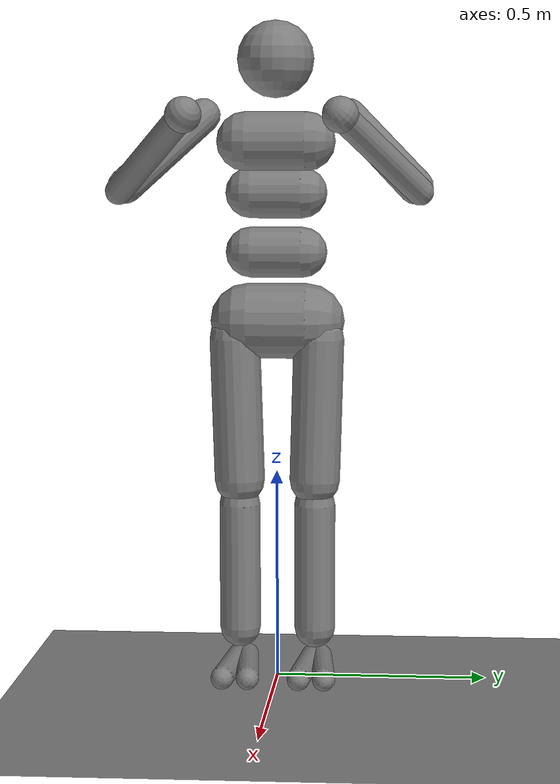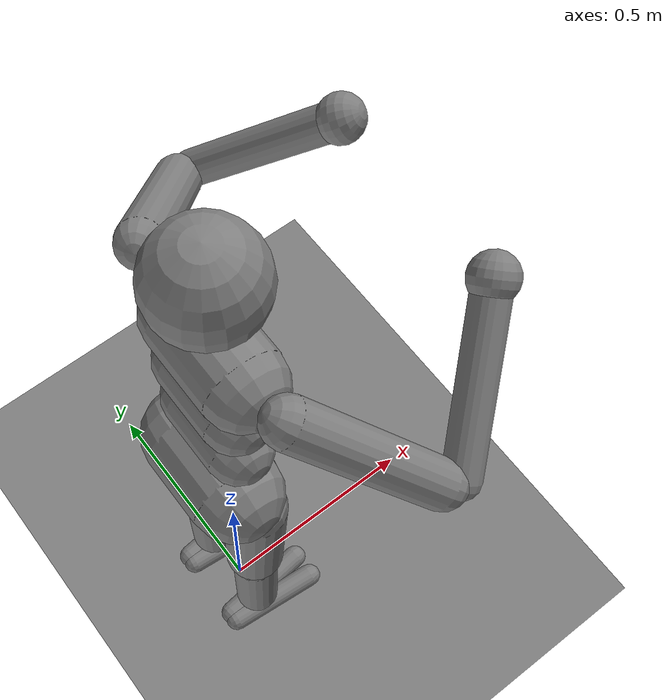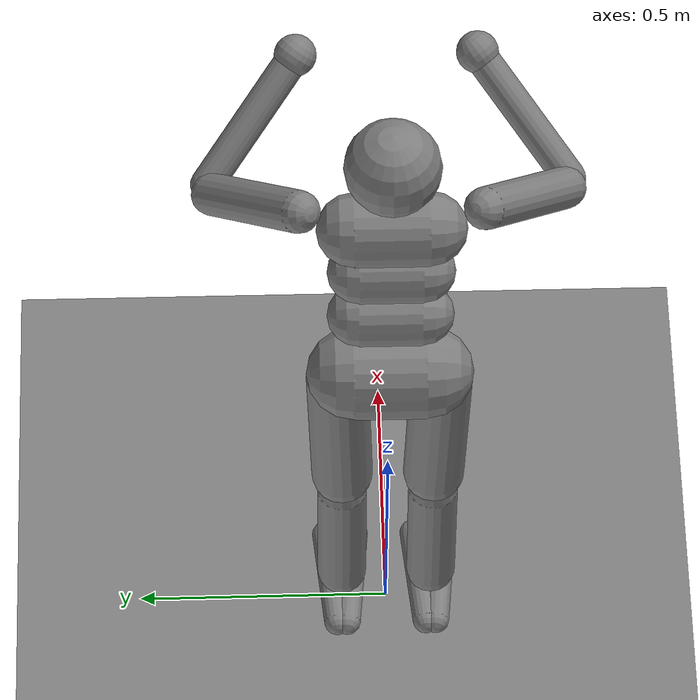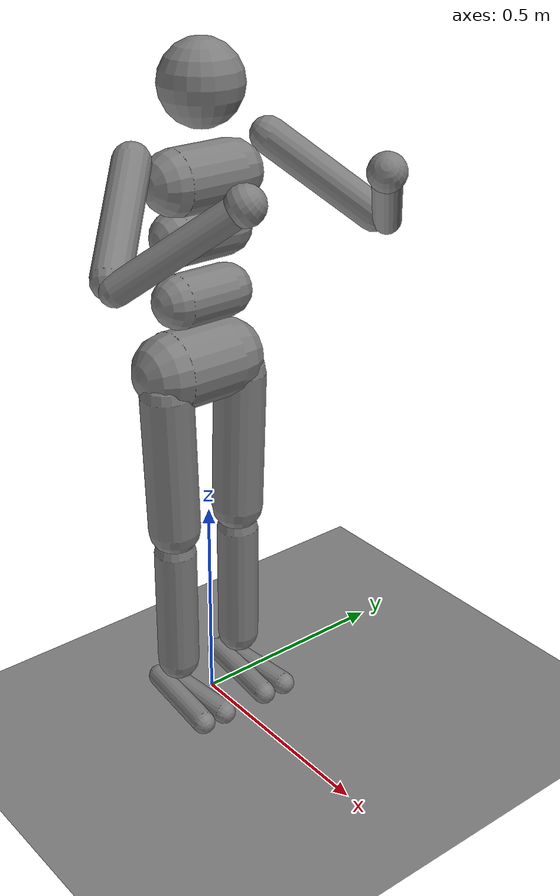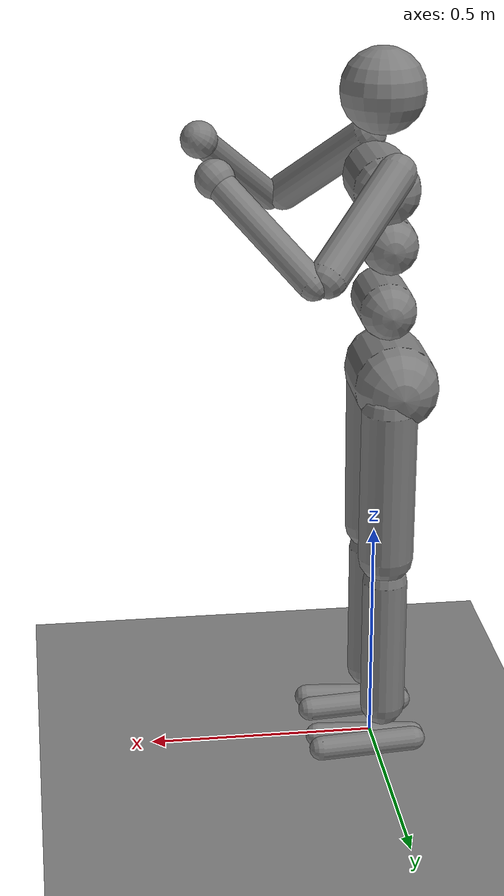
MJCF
<mujoco>
  <worldbody>
    <body pos="0 0 1.282" quat="-1 0 0 0" gravcomp="0" name="torso_0">
      <freejoint name="root_1" />
      <geom density="1000" type="capsule" size="0.07 0.07000002" pos="0 0 0" quat="0.7071068 0.7071068 0 0" priority="0" contype="1" conaffinity="1" group="1" condim="1" solmix="1" solref="0.015 1" solimp="0.9 0.99 0.003" margin="0" gap="0" friction="0.7 0.005 0.0001" fluidshape="none" fluidcoef="5 0.25 1.5 1 1" name="torso_2" />
      <geom density="1000" type="capsule" size="0.06 0.06000001" pos="-0.01 0 -0.12" quat="0.7071068 0.7071068 0 0" priority="0" contype="1" conaffinity="1" group="1" condim="1" solmix="1" solref="0.015 1" solimp="0.9 0.99 0.003" margin="0" gap="0" friction="0.7 0.005 0.0001" fluidshape="none" fluidcoef="5 0.25 1.5 1 1" name="waist_upper_3" />
      <body pos="0 0 0.1899999" quat="-1 0 0 0" gravcomp="0" name="head_4">
        <geom density="1000" type="sphere" size="0.09" pos="0 0 0" quat="-1 0 0 0" priority="0" contype="1" conaffinity="1" group="1" condim="1" solmix="1" solref="0.015 1" solimp="0.9 0.99 0.003" margin="0" gap="0" friction="0.7 0.005 0.0001" fluidshape="none" fluidcoef="5 0.25 1.5 1 1" name="head_8" />
      </body>
      <body pos="-0.01 0 -0.26" quat="-1 0 0 0" gravcomp="0" name="waist_lower_5">
        <joint type="hinge" pos="0 0 0.06499994" axis="-1.192093E-07 0 1" ref="0" armature="0.01" springref="0" springdamper="0 0" damping="5" stiffness="20" solreflimit="0.02 1" solimplimit="0 0.99 0.01 0.5 2" solreffriction="0.02 1" solimpfriction="0.9 0.95 0.001 0.5 2" frictionloss="0" limited="true" margin="0" range="-44.99999 44.99999" name="abdomen_z_9" />
        <joint type="hinge" pos="0 0 0.06499994" axis="-1.192093E-07 1 0" ref="0" armature="0.01" springref="0" springdamper="0 0" damping="5" stiffness="10" solreflimit="0.02 1" solimplimit="0 0.99 0.01 0.5 2" solreffriction="0.02 1" solimpfriction="0.9 0.95 0.001 0.5 2" frictionloss="0" limited="true" margin="0" range="-75.00018 30.00002" name="abdomen_y_10" />
        <geom density="1000" type="capsule" size="0.06 0.06000001" pos="0 0 0" quat="0.7071068 0.7071068 0 0" priority="0" contype="1" conaffinity="1" group="1" condim="1" solmix="1" solref="0.015 1" solimp="0.9 0.99 0.003" margin="0" gap="0" friction="0.7 0.005 0.0001" fluidshape="none" fluidcoef="5 0.25 1.5 1 1" name="waist_lower_11" />
        <body pos="0 0 -0.165" quat="-1 0 0 0" gravcomp="0" name="pelvis_12">
          <joint type="hinge" pos="0 0 0.1" axis="1 0 0" ref="0" armature="0.01" springref="0" springdamper="0 0" damping="5" stiffness="10" solreflimit="0.02 1" solimplimit="0 0.99 0.01 0.5 2" solreffriction="0.02 1" solimpfriction="0.9 0.95 0.001 0.5 2" frictionloss="0" limited="true" margin="0" range="-34.99998 34.99998" name="abdomen_x_21" />
          <geom density="1000" type="capsule" size="0.09 0.07000002" pos="-0.02 0 0" quat="0.7071068 0.7071068 0 0" priority="0" contype="1" conaffinity="1" group="1" condim="1" solmix="1" solref="0.015 1" solimp="0.9 0.99 0.003" margin="0" gap="0" friction="0.7 0.005 0.0001" fluidshape="none" fluidcoef="5 0.25 1.5 1 1" name="butt_22" />
          <body pos="0 -0.1 -0.04000002" quat="-1 0 0 0" gravcomp="0" name="thigh_right_23">
            <joint type="hinge" pos="0 0 0" axis="1 0 0" ref="0" armature="0.01" springref="0" springdamper="0 0" damping="5" stiffness="10" solreflimit="0.02 1" solimplimit="0 0.99 0.01 0.5 2" solreffriction="0.02 1" solimpfriction="0.9 0.95 0.001 0.5 2" frictionloss="0" limited="true" margin="0" range="-30.00002 10" name="hip_x_right_31" />
            <joint type="hinge" pos="0 0 0" axis="-1.192093E-07 0 1" ref="0" armature="0.01" springref="0" springdamper="0 0" damping="5" stiffness="10" solreflimit="0.02 1" solimplimit="0 0.99 0.01 0.5 2" solreffriction="0.02 1" solimpfriction="0.9 0.95 0.001 0.5 2" frictionloss="0" limited="true" margin="0" range="-60.00014 34.99998" name="hip_z_right_32" />
            <joint type="hinge" pos="0 0 0" axis="-1.192093E-07 1 0" ref="0" armature="0.01" springref="0" springdamper="0 0" damping="5" stiffness="10" solreflimit="0.02 1" solimplimit="0 0.99 0.01 0.5 2" solreffriction="0.02 1" solimpfriction="0.9 0.95 0.001 0.5 2" frictionloss="0" limited="true" margin="0" range="-149.9998 20.00001" name="hip_y_right_33" />
            <geom density="1000" type="capsule" size="0.06 0.170074" pos="0 0.005000003 -0.17" quat="0.999892 0.0147011 0 0" priority="0" contype="1" conaffinity="1" group="1" condim="1" solmix="1" solref="0.015 1" solimp="0.9 0.99 0.003" margin="0" gap="0" friction="0.7 0.005 0.0001" fluidshape="none" fluidcoef="5 0.25 1.5 1 1" name="thigh_right_34" />
            <body pos="0 0.009999998 -0.4" quat="-1 0 0 0" gravcomp="0" name="shin_right_35">
              <joint type="hinge" pos="0 0 0.02000004" axis="-1.192093E-07 -1 0" ref="0" armature="0.01" springref="0" springdamper="0 0" damping="0.2" stiffness="1" solreflimit="0.02 1" solimplimit="0 0.99 0.01 0.5 2" solreffriction="0.02 1" solimpfriction="0.9 0.95 0.001 0.5 2" frictionloss="0" limited="true" margin="0" range="-160.0002 2.000001" name="knee_right_43" />
              <geom density="1000" type="capsule" size="0.049 0.15" pos="0 0 -0.1500001" quat="-1 0 0 0" priority="0" contype="1" conaffinity="1" group="1" condim="1" solmix="1" solref="0.015 1" solimp="0.9 0.99 0.003" margin="0" gap="0" friction="0.7 0.005 0.0001" fluidshape="none" fluidcoef="5 0.25 1.5 1 1" name="shin_right_44" />
              <body pos="0 0 -0.39" quat="-1 0 0 0" gravcomp="0" name="foot_right_45">
                <joint type="hinge" pos="0 0 0.07999992" axis="-1.192093E-07 1 0" ref="0" armature="0.01" springref="0" springdamper="0 0" damping="0.2" stiffness="6" solreflimit="0.02 1" solimplimit="0 0.99 0.01 0.5 2" solreffriction="0.02 1" solimpfriction="0.9 0.95 0.001 0.5 2" frictionloss="0" limited="true" margin="0" range="-50.00002 50.00002" name="ankle_y_right_49" />
                <joint type="hinge" pos="0 0 0.03999996" axis="0.894427 0 0.447214" ref="0" armature="0.01" springref="0" springdamper="0 0" damping="0.2" stiffness="3" solreflimit="0.02 1" solimplimit="0 0.99 0.01 0.5 2" solreffriction="0.02 1" solimpfriction="0.9 0.95 0.001 0.5 2" frictionloss="0" limited="true" margin="0" range="-50.00002 50.00002" name="ankle_x_right_50" />
                <geom density="1000" type="capsule" size="0.02700001 0.105475" pos="0.035 -0.02 0" quat="0.7071068 -0.06704018 -0.7039217 0" priority="0" contype="1" conaffinity="1" group="1" condim="1" solmix="1" solref="0.015 1" solimp="0.9 0.99 0.003" margin="0" gap="0" friction="0.7 0.005 0.0001" fluidshape="none" fluidcoef="5 0.25 1.5 1 1" name="foot1_right_51" />
                <geom density="1000" type="capsule" size="0.02700001 0.105475" pos="0.035 0.02 0" quat="0.7071068 0.06704018 -0.7039217 0" priority="0" contype="1" conaffinity="1" group="1" condim="1" solmix="1" solref="0.015 1" solimp="0.9 0.99 0.003" margin="0" gap="0" friction="0.7 0.005 0.0001" fluidshape="none" fluidcoef="5 0.25 1.5 1 1" name="foot2_right_52" />
              </body>
            </body>
          </body>
          <body pos="0 0.1 -0.04000002" quat="-1 0 0 0" gravcomp="0" name="thigh_left_24">
            <joint type="hinge" pos="0 0 0" axis="-1 0 0" ref="0" armature="0.01" springref="0" springdamper="0 0" damping="5" stiffness="10" solreflimit="0.02 1" solimplimit="0 0.99 0.01 0.5 2" solreffriction="0.02 1" solimpfriction="0.9 0.95 0.001 0.5 2" frictionloss="0" limited="true" margin="0" range="-30.00002 10" name="hip_x_left_36" />
            <joint type="hinge" pos="0 0 0" axis="-1.192093E-07 0 -1" ref="0" armature="0.01" springref="0" springdamper="0 0" damping="5" stiffness="10" solreflimit="0.02 1" solimplimit="0 0.99 0.01 0.5 2" solreffriction="0.02 1" solimpfriction="0.9 0.95 0.001 0.5 2" frictionloss="0" limited="true" margin="0" range="-60.00014 34.99998" name="hip_z_left_37" />
            <joint type="hinge" pos="0 0 0" axis="-1.192093E-07 1 0" ref="0" armature="0.01" springref="0" springdamper="0 0" damping="5" stiffness="10" solreflimit="0.02 1" solimplimit="0 0.99 0.01 0.5 2" solreffriction="0.02 1" solimpfriction="0.9 0.95 0.001 0.5 2" frictionloss="0" limited="true" margin="0" range="-149.9998 20.00001" name="hip_y_left_38" />
            <geom density="1000" type="capsule" size="0.06 0.170074" pos="0 -0.005000003 -0.17" quat="0.999892 -0.0147011 0 0" priority="0" contype="1" conaffinity="1" group="1" condim="1" solmix="1" solref="0.015 1" solimp="0.9 0.99 0.003" margin="0" gap="0" friction="0.7 0.005 0.0001" fluidshape="none" fluidcoef="5 0.25 1.5 1 1" name="thigh_left_39" />
            <body pos="0 -0.009999998 -0.4" quat="-1 0 0 0" gravcomp="0" name="shin_left_40">
              <joint type="hinge" pos="0 0 0.02000004" axis="-1.192093E-07 -1 0" ref="0" armature="0.01" springref="0" springdamper="0 0" damping="0.2" stiffness="1" solreflimit="0.02 1" solimplimit="0 0.99 0.01 0.5 2" solreffriction="0.02 1" solimpfriction="0.9 0.95 0.001 0.5 2" frictionloss="0" limited="true" margin="0" range="-160.0002 2.000001" name="knee_left_46" />
              <geom density="1000" type="capsule" size="0.049 0.15" pos="0 0 -0.1500001" quat="-1 0 0 0" priority="0" contype="1" conaffinity="1" group="1" condim="1" solmix="1" solref="0.015 1" solimp="0.9 0.99 0.003" margin="0" gap="0" friction="0.7 0.005 0.0001" fluidshape="none" fluidcoef="5 0.25 1.5 1 1" name="shin_left_47" />
              <body pos="0 0 -0.39" quat="-1 0 0 0" gravcomp="0" name="foot_left_48">
                <joint type="hinge" pos="0 0 0.07999992" axis="-1.192093E-07 1 0" ref="0" armature="0.01" springref="0" springdamper="0 0" damping="0.2" stiffness="6" solreflimit="0.02 1" solimplimit="0 0.99 0.01 0.5 2" solreffriction="0.02 1" solimpfriction="0.9 0.95 0.001 0.5 2" frictionloss="0" limited="true" margin="0" range="-50.00002 50.00002" name="ankle_y_left_53" />
                <joint type="hinge" pos="0 0 0.03999996" axis="-0.8944269 0 -0.447214" ref="0" armature="0.01" springref="0" springdamper="0 0" damping="0.2" stiffness="3" solreflimit="0.02 1" solimplimit="0 0.99 0.01 0.5 2" solreffriction="0.02 1" solimpfriction="0.9 0.95 0.001 0.5 2" frictionloss="0" limited="true" margin="0" range="-50.00002 50.00002" name="ankle_x_left_54" />
                <geom density="1000" type="capsule" size="0.02700001 0.105475" pos="0.035 -0.02 0" quat="0.7071068 -0.06704018 -0.7039217 0" priority="0" contype="1" conaffinity="1" group="1" condim="1" solmix="1" solref="0.015 1" solimp="0.9 0.99 0.003" margin="0" gap="0" friction="0.7 0.005 0.0001" fluidshape="none" fluidcoef="5 0.25 1.5 1 1" name="foot1_left_55" />
                <geom density="1000" type="capsule" size="0.02700001 0.105475" pos="0.035 0.02 0" quat="0.7071068 0.06704018 -0.7039217 0" priority="0" contype="1" conaffinity="1" group="1" condim="1" solmix="1" solref="0.015 1" solimp="0.9 0.99 0.003" margin="0" gap="0" friction="0.7 0.005 0.0001" fluidshape="none" fluidcoef="5 0.25 1.5 1 1" name="foot2_left_56" />
              </body>
            </body>
          </body>
        </body>
      </body>
      <body pos="0 -0.17 0.05999994" quat="-1 0 0 0" gravcomp="0" name="upper_arm_right_6">
        <joint type="hinge" pos="0 0 0" axis="0.8164969 0.408248 0.408248" ref="0" armature="0.01" springref="0" springdamper="0 0" damping="0.2" stiffness="1" solreflimit="0.02 1" solimplimit="0 0.99 0.01 0.5 2" solreffriction="0.02 1" solimpfriction="0.9 0.95 0.001 0.5 2" frictionloss="0" limited="true" margin="0" range="-85.00001 60.00014" name="shoulder1_right_13" />
        <joint type="hinge" pos="0 0 0" axis="0 -0.7071068 0.7071068" ref="0" armature="0.01" springref="0" springdamper="0 0" damping="0.2" stiffness="1" solreflimit="0.02 1" solimplimit="0 0.99 0.01 0.5 2" solreffriction="0.02 1" solimpfriction="0.9 0.95 0.001 0.5 2" frictionloss="0" limited="true" margin="0" range="-85.00001 60.00014" name="shoulder2_right_14" />
        <geom density="1000" type="capsule" size="0.04 0.138564" pos="0.08 -0.08 -0.07999992" quat="0.8880737 -0.3250579 -0.3250579 0" priority="0" contype="1" conaffinity="1" group="1" condim="1" solmix="1" solref="0.015 1" solimp="0.9 0.99 0.003" margin="0" gap="0" friction="0.7 0.005 0.0001" fluidshape="none" fluidcoef="5 0.25 1.5 1 1" name="upper_arm_right_15" />
        <body pos="0.18 -0.18 -0.1799999" quat="-1 0 0 0" gravcomp="0" name="lower_arm_right_16">
          <joint type="hinge" pos="0 0 0" axis="0 -0.7071068 0.7071068" ref="0" armature="0.01" springref="0" springdamper="0 0" damping="0.2" stiffness="0" solreflimit="0.02 1" solimplimit="0 0.99 0.01 0.5 2" solreffriction="0.02 1" solimpfriction="0.9 0.95 0.001 0.5 2" frictionloss="0" limited="true" margin="0" range="-100 50.00002" name="elbow_right_25" />
          <geom density="1000" type="capsule" size="0.031 0.138564" pos="0.09 0.09000003 0.09000003" quat="0.459701 0.627963 -0.627963 0" priority="0" contype="1" conaffinity="1" group="1" condim="1" solmix="1" solref="0.015 1" solimp="0.9 0.99 0.003" margin="0" gap="0" friction="0.7 0.005 0.0001" fluidshape="none" fluidcoef="5 0.25 1.5 1 1" name="lower_arm_right_26" />
          <body pos="0.18 0.18 0.1799999" quat="-1 0 0 0" gravcomp="0" name="hand_right_27">
            <geom density="1000" type="sphere" size="0.04" pos="0 0 0" quat="0.8880737 -0.3250579 0.3250579 0" priority="0" contype="1" conaffinity="1" group="1" condim="1" solmix="1" solref="0.015 1" solimp="0.9 0.99 0.003" margin="0" gap="0" friction="0.7 0.005 0.0001" fluidshape="none" fluidcoef="5 0.25 1.5 1 1" name="hand_right_41" />
          </body>
        </body>
      </body>
      <body pos="0 0.17 0.05999994" quat="-1 0 0 0" gravcomp="0" name="upper_arm_left_7">
        <joint type="hinge" pos="0 0 0" axis="-0.8164969 0.4082479 -0.4082479" ref="0" armature="0.01" springref="0" springdamper="0 0" damping="0.2" stiffness="1" solreflimit="0.02 1" solimplimit="0 0.99 0.01 0.5 2" solreffriction="0.02 1" solimpfriction="0.9 0.95 0.001 0.5 2" frictionloss="0" limited="true" margin="0" range="-85.00001 60.00014" name="shoulder1_left_17" />
        <joint type="hinge" pos="0 0 0" axis="0 -0.7071068 -0.7071068" ref="0" armature="0.01" springref="0" springdamper="0 0" damping="0.2" stiffness="1" solreflimit="0.02 1" solimplimit="0 0.99 0.01 0.5 2" solreffriction="0.02 1" solimpfriction="0.9 0.95 0.001 0.5 2" frictionloss="0" limited="true" margin="0" range="-85.00001 60.00014" name="shoulder2_left_18" />
        <geom density="1000" type="capsule" size="0.04 0.138564" pos="0.08 0.08 -0.07999992" quat="0.8880737 0.3250579 -0.3250579 0" priority="0" contype="1" conaffinity="1" group="1" condim="1" solmix="1" solref="0.015 1" solimp="0.9 0.99 0.003" margin="0" gap="0" friction="0.7 0.005 0.0001" fluidshape="none" fluidcoef="5 0.25 1.5 1 1" name="upper_arm_left_19" />
        <body pos="0.18 0.18 -0.1799999" quat="-1 0 0 0" gravcomp="0" name="lower_arm_left_20">
          <joint type="hinge" pos="0 0 0" axis="0 -0.7071068 -0.7071068" ref="0" armature="0.01" springref="0" springdamper="0 0" damping="0.2" stiffness="0" solreflimit="0.02 1" solimplimit="0 0.99 0.01 0.5 2" solreffriction="0.02 1" solimpfriction="0.9 0.95 0.001 0.5 2" frictionloss="0" limited="true" margin="0" range="-100 50.00002" name="elbow_left_28" />
          <geom density="1000" type="capsule" size="0.031 0.138564" pos="0.09 -0.09000003 0.09000003" quat="0.459701 -0.627963 -0.627963 0" priority="0" contype="1" conaffinity="1" group="1" condim="1" solmix="1" solref="0.015 1" solimp="0.9 0.99 0.003" margin="0" gap="0" friction="0.7 0.005 0.0001" fluidshape="none" fluidcoef="5 0.25 1.5 1 1" name="lower_arm_left_29" />
          <body pos="0.18 -0.18 0.1799999" quat="-1 0 0 0" gravcomp="0" name="hand_left_30">
            <geom density="1000" type="sphere" size="0.04" pos="0 0 0" quat="0.8880737 0.3250579 0.3250579 0" priority="0" contype="1" conaffinity="1" group="1" condim="1" solmix="1" solref="0.015 1" solimp="0.9 0.99 0.003" margin="0" gap="0" friction="0.7 0.005 0.0001" fluidshape="none" fluidcoef="5 0.25 1.5 1 1" name="hand_left_42" />
          </body>
        </body>
      </body>
    </body>
    <geom density="1000" type="plane" size="0 0 1" pos="0 0 0" quat="-1 0 0 0" priority="0" contype="1" conaffinity="1" group="0" condim="3" solmix="1" solref="0.02 1" solimp="0.9 0.95 0.001" margin="0" gap="0" friction="1 0.005 0.0001" fluidshape="none" fluidcoef="5 0.25 1.5 1 1" name="floor_57" />
  </worldbody>
  <contact>
    <exclude body1="waist_lower_5" body2="thigh_left_24" name="exclude_1_58" />
    <exclude body1="waist_lower_5" body2="thigh_right_23" name="exclude_0_59" />
  </contact>
  <tendon>
    <fixed range="-0.3 2" solreflimit="0.02 1" solimplimit="0.9 0.95 0.001 0.5 2" solreffriction="0.02 1" solimpfriction="0.9 0.95 0.001 0.5 2" frictionloss="0" limited="true" margin="0" springlength="-1" damping="0" stiffness="0" name="hamstring_left_60">
      <joint joint="hip_y_left_38" coef="0.5" />
      <joint joint="knee_left_46" coef="-0.5" />
    </fixed>
    <fixed range="-0.3 2" solreflimit="0.02 1" solimplimit="0.9 0.95 0.001 0.5 2" solreffriction="0.02 1" solimpfriction="0.9 0.95 0.001 0.5 2" frictionloss="0" limited="true" margin="0" springlength="-1" damping="0" stiffness="0" name="hamstring_right_61">
      <joint joint="hip_y_right_33" coef="0.5" />
      <joint joint="knee_right_43" coef="-0.5" />
    </fixed>
  </tendon>
  <equality />
  <actuator>
    <general joint="abdomen_z_9" ctrllimited="true" forcelimited="false" ctrlrange="-1 1" forcerange="0 0" lengthrange="0 0" gear="40 0 0 0 0 0" dyntype="none" gaintype="fixed" biastype="none" dynprm="1 0 0" gainprm="1 0 0" biasprm="0 0 0" name="abdomen_z_62" />
    <general joint="abdomen_y_10" ctrllimited="true" forcelimited="false" ctrlrange="-1 1" forcerange="0 0" lengthrange="0 0" gear="40 0 0 0 0 0" dyntype="none" gaintype="fixed" biastype="none" dynprm="1 0 0" gainprm="1 0 0" biasprm="0 0 0" name="abdomen_y_63" />
    <general joint="abdomen_x_21" ctrllimited="true" forcelimited="false" ctrlrange="-1 1" forcerange="0 0" lengthrange="0 0" gear="40 0 0 0 0 0" dyntype="none" gaintype="fixed" biastype="none" dynprm="1 0 0" gainprm="1 0 0" biasprm="0 0 0" name="abdomen_x_64" />
    <general joint="hip_x_right_31" ctrllimited="true" forcelimited="false" ctrlrange="-1 1" forcerange="0 0" lengthrange="0 0" gear="40 0 0 0 0 0" dyntype="none" gaintype="fixed" biastype="none" dynprm="1 0 0" gainprm="1 0 0" biasprm="0 0 0" name="hip_x_right_65" />
    <general joint="hip_z_right_32" ctrllimited="true" forcelimited="false" ctrlrange="-1 1" forcerange="0 0" lengthrange="0 0" gear="40 0 0 0 0 0" dyntype="none" gaintype="fixed" biastype="none" dynprm="1 0 0" gainprm="1 0 0" biasprm="0 0 0" name="hip_z_right_66" />
    <general joint="hip_y_right_33" ctrllimited="true" forcelimited="false" ctrlrange="-1 1" forcerange="0 0" lengthrange="0 0" gear="120 0 0 0 0 0" dyntype="none" gaintype="fixed" biastype="none" dynprm="1 0 0" gainprm="1 0 0" biasprm="0 0 0" name="hip_y_right_67" />
    <general joint="knee_right_43" ctrllimited="true" forcelimited="false" ctrlrange="-1 1" forcerange="0 0" lengthrange="0 0" gear="80 0 0 0 0 0" dyntype="none" gaintype="fixed" biastype="none" dynprm="1 0 0" gainprm="1 0 0" biasprm="0 0 0" name="knee_right_68" />
    <general joint="ankle_y_right_49" ctrllimited="true" forcelimited="false" ctrlrange="-1 1" forcerange="0 0" lengthrange="0 0" gear="20 0 0 0 0 0" dyntype="none" gaintype="fixed" biastype="none" dynprm="1 0 0" gainprm="1 0 0" biasprm="0 0 0" name="ankle_y_right_69" />
    <general joint="ankle_x_right_50" ctrllimited="true" forcelimited="false" ctrlrange="-1 1" forcerange="0 0" lengthrange="0 0" gear="20 0 0 0 0 0" dyntype="none" gaintype="fixed" biastype="none" dynprm="1 0 0" gainprm="1 0 0" biasprm="0 0 0" name="ankle_x_right_70" />
    <general joint="hip_x_left_36" ctrllimited="true" forcelimited="false" ctrlrange="-1 1" forcerange="0 0" lengthrange="0 0" gear="40 0 0 0 0 0" dyntype="none" gaintype="fixed" biastype="none" dynprm="1 0 0" gainprm="1 0 0" biasprm="0 0 0" name="hip_x_left_71" />
    <general joint="hip_z_left_37" ctrllimited="true" forcelimited="false" ctrlrange="-1 1" forcerange="0 0" lengthrange="0 0" gear="40 0 0 0 0 0" dyntype="none" gaintype="fixed" biastype="none" dynprm="1 0 0" gainprm="1 0 0" biasprm="0 0 0" name="hip_z_left_72" />
    <general joint="hip_y_left_38" ctrllimited="true" forcelimited="false" ctrlrange="-1 1" forcerange="0 0" lengthrange="0 0" gear="120 0 0 0 0 0" dyntype="none" gaintype="fixed" biastype="none" dynprm="1 0 0" gainprm="1 0 0" biasprm="0 0 0" name="hip_y_left_73" />
    <general joint="knee_left_46" ctrllimited="true" forcelimited="false" ctrlrange="-1 1" forcerange="0 0" lengthrange="0 0" gear="80 0 0 0 0 0" dyntype="none" gaintype="fixed" biastype="none" dynprm="1 0 0" gainprm="1 0 0" biasprm="0 0 0" name="knee_left_74" />
    <general joint="ankle_y_left_53" ctrllimited="true" forcelimited="false" ctrlrange="-1 1" forcerange="0 0" lengthrange="0 0" gear="20 0 0 0 0 0" dyntype="none" gaintype="fixed" biastype="none" dynprm="1 0 0" gainprm="1 0 0" biasprm="0 0 0" name="ankle_y_left_75" />
    <general joint="ankle_x_left_54" ctrllimited="true" forcelimited="false" ctrlrange="-1 1" forcerange="0 0" lengthrange="0 0" gear="20 0 0 0 0 0" dyntype="none" gaintype="fixed" biastype="none" dynprm="1 0 0" gainprm="1 0 0" biasprm="0 0 0" name="ankle_x_left_76" />
    <general joint="shoulder1_right_13" ctrllimited="true" forcelimited="false" ctrlrange="-1 1" forcerange="0 0" lengthrange="0 0" gear="20 0 0 0 0 0" dyntype="none" gaintype="fixed" biastype="none" dynprm="1 0 0" gainprm="1 0 0" biasprm="0 0 0" name="shoulder1_right_77" />
    <general joint="shoulder2_right_14" ctrllimited="true" forcelimited="false" ctrlrange="-1 1" forcerange="0 0" lengthrange="0 0" gear="20 0 0 0 0 0" dyntype="none" gaintype="fixed" biastype="none" dynprm="1 0 0" gainprm="1 0 0" biasprm="0 0 0" name="shoulder2_right_78" />
    <general joint="elbow_right_25" ctrllimited="true" forcelimited="false" ctrlrange="-1 1" forcerange="0 0" lengthrange="0 0" gear="40 0 0 0 0 0" dyntype="none" gaintype="fixed" biastype="none" dynprm="1 0 0" gainprm="1 0 0" biasprm="0 0 0" name="elbow_right_79" />
    <general joint="shoulder1_left_17" ctrllimited="true" forcelimited="false" ctrlrange="-1 1" forcerange="0 0" lengthrange="0 0" gear="20 0 0 0 0 0" dyntype="none" gaintype="fixed" biastype="none" dynprm="1 0 0" gainprm="1 0 0" biasprm="0 0 0" name="shoulder1_left_80" />
    <general joint="shoulder2_left_18" ctrllimited="true" forcelimited="false" ctrlrange="-1 1" forcerange="0 0" lengthrange="0 0" gear="20 0 0 0 0 0" dyntype="none" gaintype="fixed" biastype="none" dynprm="1 0 0" gainprm="1 0 0" biasprm="0 0 0" name="shoulder2_left_81" />
    <general joint="elbow_left_28" ctrllimited="true" forcelimited="false" ctrlrange="-1 1" forcerange="0 0" lengthrange="0 0" gear="40 0 0 0 0 0" dyntype="none" gaintype="fixed" biastype="none" dynprm="1 0 0" gainprm="1 0 0" biasprm="0 0 0" name="elbow_left_82" />
  </actuator>
  <sensor />
  <compiler coordinate="local" />
  <option gravity="0 0 -9.81" timestep="0.01999999" />
  <option impratio="1" magnetic="0 0 0" wind="0 0 0" density="0" viscosity="0" o_margin="0" o_solref="0.02 1" o_solimp="0.9 0.95 0.001 0.5 2" integrator="Euler" cone="pyramidal" jacobian="auto" solver="Newton" iterations="100" tolerance="1E-08" noslip_iterations="0" noslip_tolerance="1E-06" ccd_iterations="50" ccd_tolerance="1E-06">
    <flag constraint="enable" equality="enable" frictionloss="enable" limit="enable" contact="enable" passive="enable" gravity="enable" clampctrl="enable" warmstart="enable" filterparent="enable" actuation="enable" refsafe="enable" override="disable" energy="disable" fwdinv="disable" multiccd="disable" />
  </option>
  <size memory="-1" />
  <custom />
  <asset />
</mujoco>
